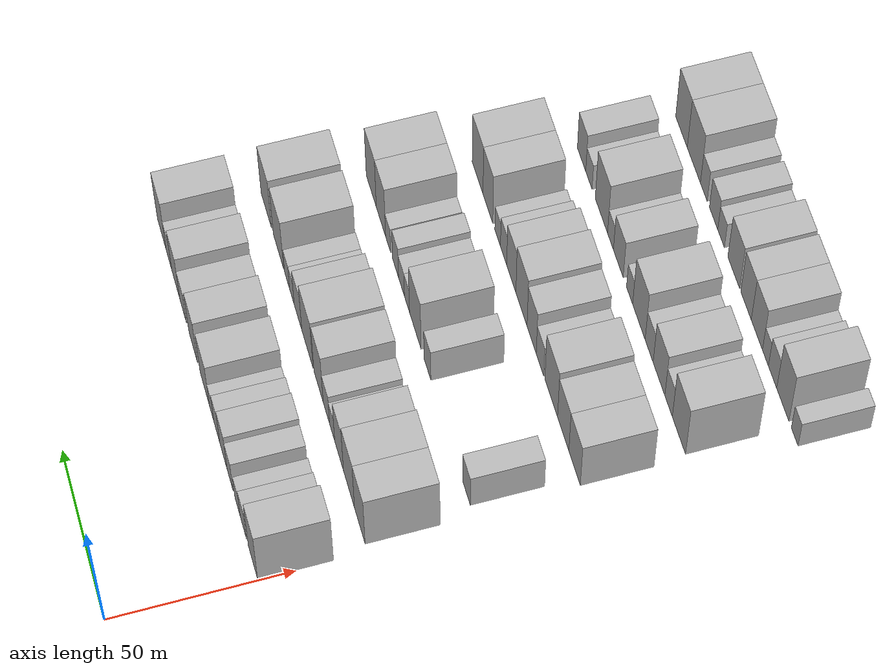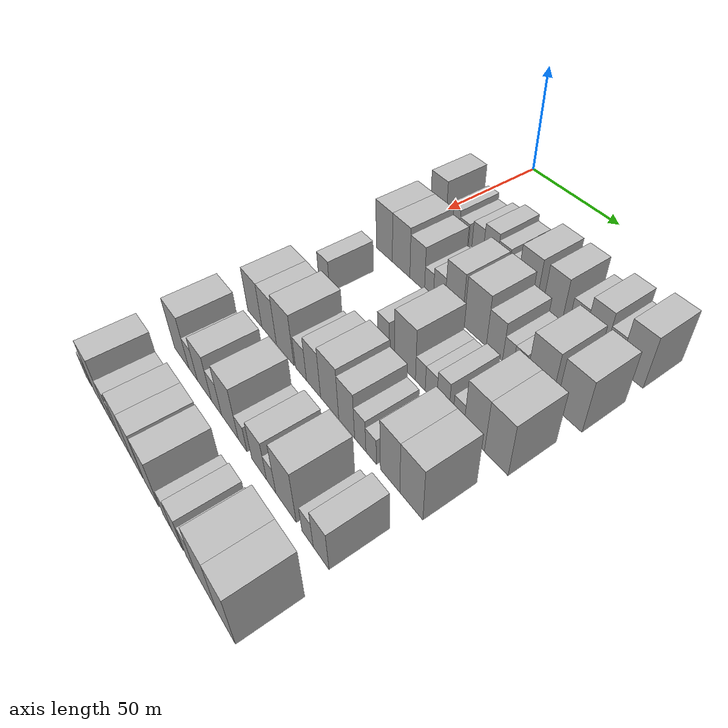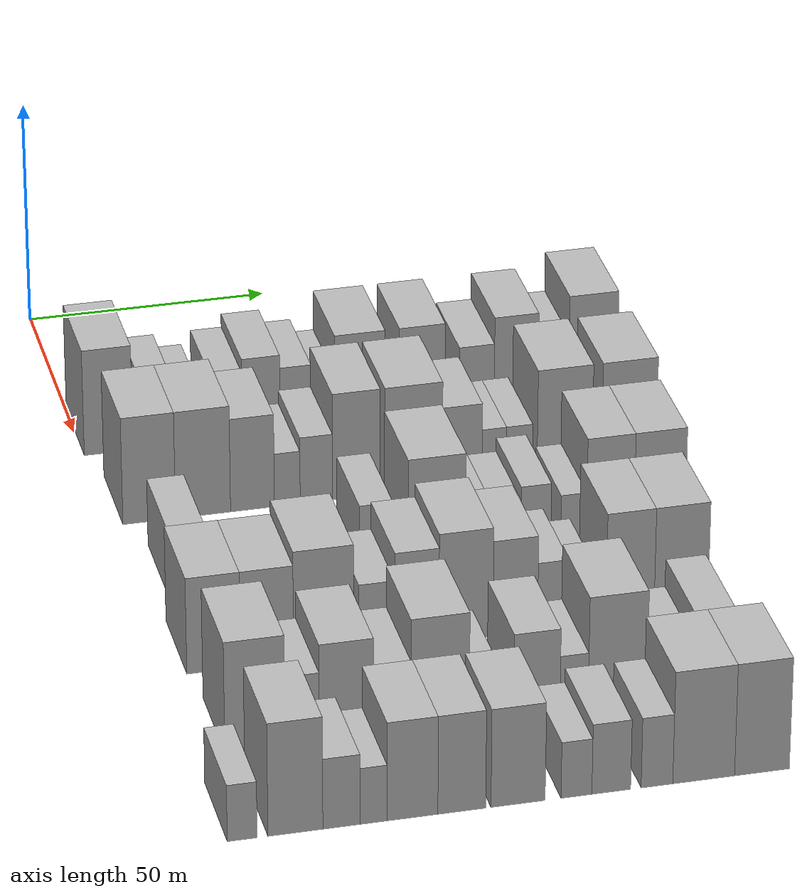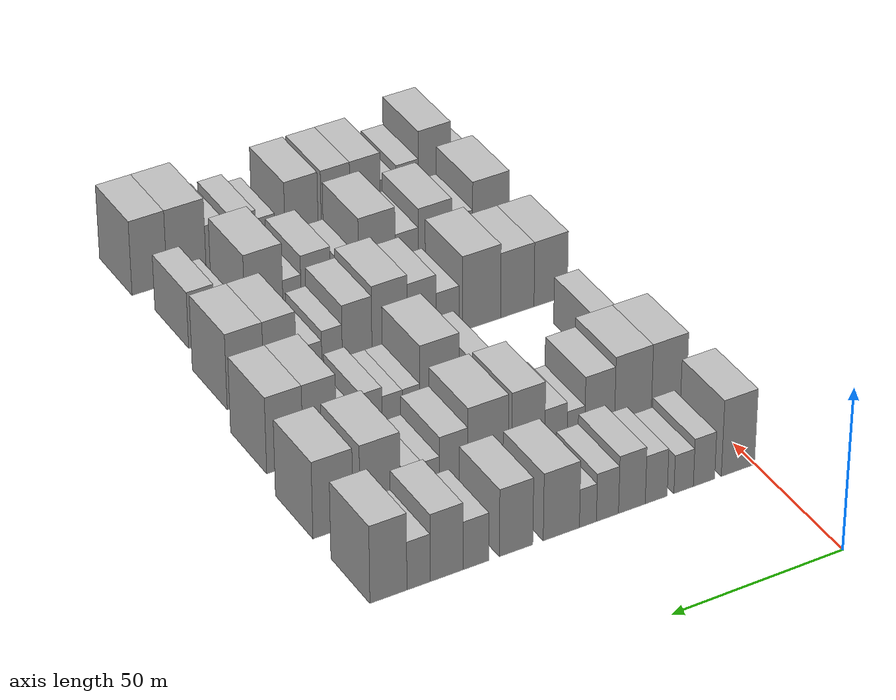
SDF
<sdf version="1.6">
 <world name="default">
  <model name="building_55">
   <static>1</static>
   <pose>50.0000 5.2146 0 0.000000 0.000000 0.000000</pose>
   <link name="link">
    <pose>0 0 12.00 0 0 0</pose>
    <collision name="collision"><geometry><box><size>20.0000 10.0101 24.0000</size></box></geometry></collision>
    <visual name="visual">
     <cast_shadows>0</cast_shadows>
     <geometry><box><size>20.0000 10.0101 24.0000</size></box></geometry>
     <material>
      <script>
       <uri>model://HANNAS_wall/materials/scripts</uri>
       <uri>model://HANNAS_wall/materials/textures</uri>
       <name>vrc/HANNAS_wall</name>
      </script>
     </material>
    </visual>
   </link>
  </model>
  <model name="building_56">
   <static>1</static>
   <pose>50.0000 15.4160 0 0.000000 0.000000 0.000000</pose>
   <link name="link">
    <pose>0 0 7.50 0 0 0</pose>
    <collision name="collision"><geometry><box><size>20.0000 6.3928 15.0000</size></box></geometry></collision>
    <visual name="visual">
     <cast_shadows>0</cast_shadows>
     <geometry><box><size>20.0000 6.3928 15.0000</size></box></geometry>
     <material>
      <script>
       <uri>model://HANNAS_wall/materials/scripts</uri>
       <uri>model://HANNAS_wall/materials/textures</uri>
       <name>vrc/HANNAS_wall</name>
      </script>
     </material>
    </visual>
   </link>
  </model>
  <model name="building_57">
   <static>1</static>
   <pose>50.0000 21.5016 0 0.000000 0.000000 0.000000</pose>
   <link name="link">
    <pose>0 0 6.00 0 0 0</pose>
    <collision name="collision"><geometry><box><size>20.0000 5.7785 12.0000</size></box></geometry></collision>
    <visual name="visual">
     <cast_shadows>0</cast_shadows>
     <geometry><box><size>20.0000 5.7785 12.0000</size></box></geometry>
     <material>
      <script>
       <uri>model://HANNAS_wall/materials/scripts</uri>
       <uri>model://HANNAS_wall/materials/textures</uri>
       <name>vrc/HANNAS_wall</name>
      </script>
     </material>
    </visual>
   </link>
  </model>
  <model name="building_58">
   <static>1</static>
   <pose>50.0000 29.6361 0 0.000000 0.000000 0.000000</pose>
   <link name="link">
    <pose>0 0 7.50 0 0 0</pose>
    <collision name="collision"><geometry><box><size>20.0000 6.4904 15.0000</size></box></geometry></collision>
    <visual name="visual">
     <cast_shadows>0</cast_shadows>
     <geometry><box><size>20.0000 6.4904 15.0000</size></box></geometry>
     <material>
      <script>
       <uri>model://HANNAS_wall/materials/scripts</uri>
       <uri>model://HANNAS_wall/materials/textures</uri>
       <name>vrc/HANNAS_wall</name>
      </script>
     </material>
    </visual>
   </link>
  </model>
  <model name="building_59">
   <static>1</static>
   <pose>50.0000 36.8214 0 0.000000 0.000000 0.000000</pose>
   <link name="link">
    <pose>0 0 9.00 0 0 0</pose>
    <collision name="collision"><geometry><box><size>20.0000 7.8803 18.0000</size></box></geometry></collision>
    <visual name="visual">
     <cast_shadows>0</cast_shadows>
     <geometry><box><size>20.0000 7.8803 18.0000</size></box></geometry>
     <material>
      <script>
       <uri>model://HANNAS_wall/materials/scripts</uri>
       <uri>model://HANNAS_wall/materials/textures</uri>
       <name>vrc/HANNAS_wall</name>
      </script>
     </material>
    </visual>
   </link>
  </model>
  <model name="building_60">
   <static>1</static>
   <pose>50.0000 44.0002 0 0.000000 0.000000 0.000000</pose>
   <link name="link">
    <pose>0 0 7.50 0 0 0</pose>
    <collision name="collision"><geometry><box><size>20.0000 6.4773 15.0000</size></box></geometry></collision>
    <visual name="visual">
     <cast_shadows>0</cast_shadows>
     <geometry><box><size>20.0000 6.4773 15.0000</size></box></geometry>
     <material>
      <script>
       <uri>model://HANNAS_wall/materials/scripts</uri>
       <uri>model://HANNAS_wall/materials/textures</uri>
       <name>vrc/HANNAS_wall</name>
      </script>
     </material>
    </visual>
   </link>
  </model>
  <model name="building_61">
   <static>1</static>
   <pose>50.0000 49.7104 0 0.000000 0.000000 0.000000</pose>
   <link name="link">
    <pose>0 0 6.00 0 0 0</pose>
    <collision name="collision"><geometry><box><size>20.0000 4.9431 12.0000</size></box></geometry></collision>
    <visual name="visual">
     <cast_shadows>0</cast_shadows>
     <geometry><box><size>20.0000 4.9431 12.0000</size></box></geometry>
     <material>
      <script>
       <uri>model://HANNAS_wall/materials/scripts</uri>
       <uri>model://HANNAS_wall/materials/textures</uri>
       <name>vrc/HANNAS_wall</name>
      </script>
     </material>
    </visual>
   </link>
  </model>
  <model name="building_62">
   <static>1</static>
   <pose>50.0000 57.4288 0 0.000000 0.000000 0.000000</pose>
   <link name="link">
    <pose>0 0 10.50 0 0 0</pose>
    <collision name="collision"><geometry><box><size>20.0000 10.4938 21.0000</size></box></geometry></collision>
    <visual name="visual">
     <cast_shadows>0</cast_shadows>
     <geometry><box><size>20.0000 10.4938 21.0000</size></box></geometry>
     <material>
      <script>
       <uri>model://HANNAS_wall/materials/scripts</uri>
       <uri>model://HANNAS_wall/materials/textures</uri>
       <name>vrc/HANNAS_wall</name>
      </script>
     </material>
    </visual>
   </link>
  </model>
  <model name="building_63">
   <static>1</static>
   <pose>50.0000 70.4778 0 0.000000 0.000000 0.000000</pose>
   <link name="link">
    <pose>0 0 10.50 0 0 0</pose>
    <collision name="collision"><geometry><box><size>20.0000 9.6041 21.0000</size></box></geometry></collision>
    <visual name="visual">
     <cast_shadows>0</cast_shadows>
     <geometry><box><size>20.0000 9.6041 21.0000</size></box></geometry>
     <material>
      <script>
       <uri>model://HANNAS_wall/materials/scripts</uri>
       <uri>model://HANNAS_wall/materials/textures</uri>
       <name>vrc/HANNAS_wall</name>
      </script>
     </material>
    </visual>
   </link>
  </model>
  <model name="building_64">
   <static>1</static>
   <pose>50.0000 81.9742 0 0.000000 0.000000 0.000000</pose>
   <link name="link">
    <pose>0 0 7.50 0 0 0</pose>
    <collision name="collision"><geometry><box><size>20.0000 7.3887 15.0000</size></box></geometry></collision>
    <visual name="visual">
     <cast_shadows>0</cast_shadows>
     <geometry><box><size>20.0000 7.3887 15.0000</size></box></geometry>
     <material>
      <script>
       <uri>model://HANNAS_wall/materials/scripts</uri>
       <uri>model://HANNAS_wall/materials/textures</uri>
       <name>vrc/HANNAS_wall</name>
      </script>
     </material>
    </visual>
   </link>
  </model>
  <model name="building_65">
   <static>1</static>
   <pose>50.0000 90.2944 0 0.000000 0.000000 0.000000</pose>
   <link name="link">
    <pose>0 0 10.50 0 0 0</pose>
    <collision name="collision"><geometry><box><size>20.0000 9.2517 21.0000</size></box></geometry></collision>
    <visual name="visual">
     <cast_shadows>0</cast_shadows>
     <geometry><box><size>20.0000 9.2517 21.0000</size></box></geometry>
     <material>
      <script>
       <uri>model://HANNAS_wall/materials/scripts</uri>
       <uri>model://HANNAS_wall/materials/textures</uri>
       <name>vrc/HANNAS_wall</name>
      </script>
     </material>
    </visual>
   </link>
  </model>
  <model name="building_66">
   <static>1</static>
   <pose>50.0000 98.1744 0 0.000000 0.000000 0.000000</pose>
   <link name="link">
    <pose>0 0 7.50 0 0 0</pose>
    <collision name="collision"><geometry><box><size>20.0000 6.5083 15.0000</size></box></geometry></collision>
    <visual name="visual">
     <cast_shadows>0</cast_shadows>
     <geometry><box><size>20.0000 6.5083 15.0000</size></box></geometry>
     <material>
      <script>
       <uri>model://HANNAS_wall/materials/scripts</uri>
       <uri>model://HANNAS_wall/materials/textures</uri>
       <name>vrc/HANNAS_wall</name>
      </script>
     </material>
    </visual>
   </link>
  </model>
  <model name="building_67">
   <static>1</static>
   <pose>50.0000 106.5988 0 0.000000 0.000000 0.000000</pose>
   <link name="link">
    <pose>0 0 12.00 0 0 0</pose>
    <collision name="collision"><geometry><box><size>20.0000 10.3404 24.0000</size></box></geometry></collision>
    <visual name="visual">
     <cast_shadows>0</cast_shadows>
     <geometry><box><size>20.0000 10.3404 24.0000</size></box></geometry>
     <material>
      <script>
       <uri>model://HANNAS_wall/materials/scripts</uri>
       <uri>model://HANNAS_wall/materials/textures</uri>
       <name>vrc/HANNAS_wall</name>
      </script>
     </material>
    </visual>
   </link>
  </model>
  <model name="building_172">
   <static>1</static>
   <pose>79.0000 7.8289 0 0.000000 0.000000 0.000000</pose>
   <link name="link">
    <pose>0 0 12.00 0 0 0</pose>
    <collision name="collision"><geometry><box><size>20.0000 10.6306 24.0000</size></box></geometry></collision>
    <visual name="visual">
     <cast_shadows>0</cast_shadows>
     <geometry><box><size>20.0000 10.6306 24.0000</size></box></geometry>
     <material>
      <script>
       <uri>model://HANNAS_wall/materials/scripts</uri>
       <uri>model://HANNAS_wall/materials/textures</uri>
       <name>vrc/HANNAS_wall</name>
      </script>
     </material>
    </visual>
   </link>
  </model>
  <model name="building_173">
   <static>1</static>
   <pose>79.0000 18.7126 0 0.000000 0.000000 0.000000</pose>
   <link name="link">
    <pose>0 0 12.00 0 0 0</pose>
    <collision name="collision"><geometry><box><size>20.0000 11.1369 24.0000</size></box></geometry></collision>
    <visual name="visual">
     <cast_shadows>0</cast_shadows>
     <geometry><box><size>20.0000 11.1369 24.0000</size></box></geometry>
     <material>
      <script>
       <uri>model://HANNAS_wall/materials/scripts</uri>
       <uri>model://HANNAS_wall/materials/textures</uri>
       <name>vrc/HANNAS_wall</name>
      </script>
     </material>
    </visual>
   </link>
  </model>
  <model name="building_174">
   <static>1</static>
   <pose>79.0000 28.7517 0 0.000000 0.000000 0.000000</pose>
   <link name="link">
    <pose>0 0 10.50 0 0 0</pose>
    <collision name="collision"><geometry><box><size>20.0000 8.9412 21.0000</size></box></geometry></collision>
    <visual name="visual">
     <cast_shadows>0</cast_shadows>
     <geometry><box><size>20.0000 8.9412 21.0000</size></box></geometry>
     <material>
      <script>
       <uri>model://HANNAS_wall/materials/scripts</uri>
       <uri>model://HANNAS_wall/materials/textures</uri>
       <name>vrc/HANNAS_wall</name>
      </script>
     </material>
    </visual>
   </link>
  </model>
  <model name="building_175">
   <static>1</static>
   <pose>79.0000 35.8405 0 0.000000 0.000000 0.000000</pose>
   <link name="link">
    <pose>0 0 6.00 0 0 0</pose>
    <collision name="collision"><geometry><box><size>20.0000 5.2366 12.0000</size></box></geometry></collision>
    <visual name="visual">
     <cast_shadows>0</cast_shadows>
     <geometry><box><size>20.0000 5.2366 12.0000</size></box></geometry>
     <material>
      <script>
       <uri>model://HANNAS_wall/materials/scripts</uri>
       <uri>model://HANNAS_wall/materials/textures</uri>
       <name>vrc/HANNAS_wall</name>
      </script>
     </material>
    </visual>
   </link>
  </model>
  <model name="building_176">
   <static>1</static>
   <pose>79.0000 41.7694 0 0.000000 0.000000 0.000000</pose>
   <link name="link">
    <pose>0 0 7.50 0 0 0</pose>
    <collision name="collision"><geometry><box><size>20.0000 6.6211 15.0000</size></box></geometry></collision>
    <visual name="visual">
     <cast_shadows>0</cast_shadows>
     <geometry><box><size>20.0000 6.6211 15.0000</size></box></geometry>
     <material>
      <script>
       <uri>model://HANNAS_wall/materials/scripts</uri>
       <uri>model://HANNAS_wall/materials/textures</uri>
       <name>vrc/HANNAS_wall</name>
      </script>
     </material>
    </visual>
   </link>
  </model>
  <model name="building_177">
   <static>1</static>
   <pose>79.0000 49.9518 0 0.000000 0.000000 0.000000</pose>
   <link name="link">
    <pose>0 0 12.00 0 0 0</pose>
    <collision name="collision"><geometry><box><size>20.0000 9.7436 24.0000</size></box></geometry></collision>
    <visual name="visual">
     <cast_shadows>0</cast_shadows>
     <geometry><box><size>20.0000 9.7436 24.0000</size></box></geometry>
     <material>
      <script>
       <uri>model://HANNAS_wall/materials/scripts</uri>
       <uri>model://HANNAS_wall/materials/textures</uri>
       <name>vrc/HANNAS_wall</name>
      </script>
     </material>
    </visual>
   </link>
  </model>
  <model name="building_178">
   <static>1</static>
   <pose>79.0000 61.7249 0 0.000000 0.000000 0.000000</pose>
   <link name="link">
    <pose>0 0 12.00 0 0 0</pose>
    <collision name="collision"><geometry><box><size>20.0000 11.8027 24.0000</size></box></geometry></collision>
    <visual name="visual">
     <cast_shadows>0</cast_shadows>
     <geometry><box><size>20.0000 11.8027 24.0000</size></box></geometry>
     <material>
      <script>
       <uri>model://HANNAS_wall/materials/scripts</uri>
       <uri>model://HANNAS_wall/materials/textures</uri>
       <name>vrc/HANNAS_wall</name>
      </script>
     </material>
    </visual>
   </link>
  </model>
  <model name="building_179">
   <static>1</static>
   <pose>79.0000 71.7182 0 0.000000 0.000000 0.000000</pose>
   <link name="link">
    <pose>0 0 9.00 0 0 0</pose>
    <collision name="collision"><geometry><box><size>20.0000 8.1837 18.0000</size></box></geometry></collision>
    <visual name="visual">
     <cast_shadows>0</cast_shadows>
     <geometry><box><size>20.0000 8.1837 18.0000</size></box></geometry>
     <material>
      <script>
       <uri>model://HANNAS_wall/materials/scripts</uri>
       <uri>model://HANNAS_wall/materials/textures</uri>
       <name>vrc/HANNAS_wall</name>
      </script>
     </material>
    </visual>
   </link>
  </model>
  <model name="building_180">
   <static>1</static>
   <pose>79.0000 78.3040 0 0.000000 0.000000 0.000000</pose>
   <link name="link">
    <pose>0 0 6.00 0 0 0</pose>
    <collision name="collision"><geometry><box><size>20.0000 4.9880 12.0000</size></box></geometry></collision>
    <visual name="visual">
     <cast_shadows>0</cast_shadows>
     <geometry><box><size>20.0000 4.9880 12.0000</size></box></geometry>
     <material>
      <script>
       <uri>model://HANNAS_wall/materials/scripts</uri>
       <uri>model://HANNAS_wall/materials/textures</uri>
       <name>vrc/HANNAS_wall</name>
      </script>
     </material>
    </visual>
   </link>
  </model>
  <model name="building_181">
   <static>1</static>
   <pose>79.0000 83.4930 0 0.000000 0.000000 0.000000</pose>
   <link name="link">
    <pose>0 0 6.00 0 0 0</pose>
    <collision name="collision"><geometry><box><size>20.0000 5.3899 12.0000</size></box></geometry></collision>
    <visual name="visual">
     <cast_shadows>0</cast_shadows>
     <geometry><box><size>20.0000 5.3899 12.0000</size></box></geometry>
     <material>
      <script>
       <uri>model://HANNAS_wall/materials/scripts</uri>
       <uri>model://HANNAS_wall/materials/textures</uri>
       <name>vrc/HANNAS_wall</name>
      </script>
     </material>
    </visual>
   </link>
  </model>
  <model name="building_182">
   <static>1</static>
   <pose>79.0000 92.8943 0 0.000000 0.000000 0.000000</pose>
   <link name="link">
    <pose>0 0 12.00 0 0 0</pose>
    <collision name="collision"><geometry><box><size>20.0000 11.4127 24.0000</size></box></geometry></collision>
    <visual name="visual">
     <cast_shadows>0</cast_shadows>
     <geometry><box><size>20.0000 11.4127 24.0000</size></box></geometry>
     <material>
      <script>
       <uri>model://HANNAS_wall/materials/scripts</uri>
       <uri>model://HANNAS_wall/materials/textures</uri>
       <name>vrc/HANNAS_wall</name>
      </script>
     </material>
    </visual>
   </link>
  </model>
  <model name="building_183">
   <static>1</static>
   <pose>79.0000 106.2939 0 0.000000 0.000000 0.000000</pose>
   <link name="link">
    <pose>0 0 12.00 0 0 0</pose>
    <collision name="collision"><geometry><box><size>20.0000 11.3866 24.0000</size></box></geometry></collision>
    <visual name="visual">
     <cast_shadows>0</cast_shadows>
     <geometry><box><size>20.0000 11.3866 24.0000</size></box></geometry>
     <material>
      <script>
       <uri>model://HANNAS_wall/materials/scripts</uri>
       <uri>model://HANNAS_wall/materials/textures</uri>
       <name>vrc/HANNAS_wall</name>
      </script>
     </material>
    </visual>
   </link>
  </model>
  <model name="building_288">
   <static>1</static>
   <pose>108.0000 9.4879 0 0.000000 0.000000 0.000000</pose>
   <link name="link">
    <pose>0 0 7.50 0 0 0</pose>
    <collision name="collision"><geometry><box><size>20.0000 7.3741 15.0000</size></box></geometry></collision>
    <visual name="visual">
     <cast_shadows>0</cast_shadows>
     <geometry><box><size>20.0000 7.3741 15.0000</size></box></geometry>
     <material>
      <script>
       <uri>model://HANNAS_wall/materials/scripts</uri>
       <uri>model://HANNAS_wall/materials/textures</uri>
       <name>vrc/HANNAS_wall</name>
      </script>
     </material>
    </visual>
   </link>
  </model>
  <model name="building_289">
   <static>1</static>
   <pose>108.0000 47.2314 0 0.000000 0.000000 0.000000</pose>
   <link name="link">
    <pose>0 0 7.50 0 0 0</pose>
    <collision name="collision"><geometry><box><size>20.0000 6.7043 15.0000</size></box></geometry></collision>
    <visual name="visual">
     <cast_shadows>0</cast_shadows>
     <geometry><box><size>20.0000 6.7043 15.0000</size></box></geometry>
     <material>
      <script>
       <uri>model://HANNAS_wall/materials/scripts</uri>
       <uri>model://HANNAS_wall/materials/textures</uri>
       <name>vrc/HANNAS_wall</name>
      </script>
     </material>
    </visual>
   </link>
  </model>
  <model name="building_290">
   <static>1</static>
   <pose>108.0000 59.3841 0 0.000000 0.000000 0.000000</pose>
   <link name="link">
    <pose>0 0 12.00 0 0 0</pose>
    <collision name="collision"><geometry><box><size>20.0000 11.6011 24.0000</size></box></geometry></collision>
    <visual name="visual">
     <cast_shadows>0</cast_shadows>
     <geometry><box><size>20.0000 11.6011 24.0000</size></box></geometry>
     <material>
      <script>
       <uri>model://HANNAS_wall/materials/scripts</uri>
       <uri>model://HANNAS_wall/materials/textures</uri>
       <name>vrc/HANNAS_wall</name>
      </script>
     </material>
    </visual>
   </link>
  </model>
  <model name="building_291">
   <static>1</static>
   <pose>108.0000 67.7807 0 0.000000 0.000000 0.000000</pose>
   <link name="link">
    <pose>0 0 6.00 0 0 0</pose>
    <collision name="collision"><geometry><box><size>20.0000 5.1921 12.0000</size></box></geometry></collision>
    <visual name="visual">
     <cast_shadows>0</cast_shadows>
     <geometry><box><size>20.0000 5.1921 12.0000</size></box></geometry>
     <material>
      <script>
       <uri>model://HANNAS_wall/materials/scripts</uri>
       <uri>model://HANNAS_wall/materials/textures</uri>
       <name>vrc/HANNAS_wall</name>
      </script>
     </material>
    </visual>
   </link>
  </model>
  <model name="building_292">
   <static>1</static>
   <pose>108.0000 73.3391 0 0.000000 0.000000 0.000000</pose>
   <link name="link">
    <pose>0 0 6.00 0 0 0</pose>
    <collision name="collision"><geometry><box><size>20.0000 5.9247 12.0000</size></box></geometry></collision>
    <visual name="visual">
     <cast_shadows>0</cast_shadows>
     <geometry><box><size>20.0000 5.9247 12.0000</size></box></geometry>
     <material>
      <script>
       <uri>model://HANNAS_wall/materials/scripts</uri>
       <uri>model://HANNAS_wall/materials/textures</uri>
       <name>vrc/HANNAS_wall</name>
      </script>
     </material>
    </visual>
   </link>
  </model>
  <model name="building_293">
   <static>1</static>
   <pose>108.0000 79.3528 0 0.000000 0.000000 0.000000</pose>
   <link name="link">
    <pose>0 0 7.50 0 0 0</pose>
    <collision name="collision"><geometry><box><size>20.0000 6.1026 15.0000</size></box></geometry></collision>
    <visual name="visual">
     <cast_shadows>0</cast_shadows>
     <geometry><box><size>20.0000 6.1026 15.0000</size></box></geometry>
     <material>
      <script>
       <uri>model://HANNAS_wall/materials/scripts</uri>
       <uri>model://HANNAS_wall/materials/textures</uri>
       <name>vrc/HANNAS_wall</name>
      </script>
     </material>
    </visual>
   </link>
  </model>
  <model name="building_294">
   <static>1</static>
   <pose>108.0000 87.0070 0 0.000000 0.000000 0.000000</pose>
   <link name="link">
    <pose>0 0 6.00 0 0 0</pose>
    <collision name="collision"><geometry><box><size>20.0000 5.2059 12.0000</size></box></geometry></collision>
    <visual name="visual">
     <cast_shadows>0</cast_shadows>
     <geometry><box><size>20.0000 5.2059 12.0000</size></box></geometry>
     <material>
      <script>
       <uri>model://HANNAS_wall/materials/scripts</uri>
       <uri>model://HANNAS_wall/materials/textures</uri>
       <name>vrc/HANNAS_wall</name>
      </script>
     </material>
    </visual>
   </link>
  </model>
  <model name="building_295">
   <static>1</static>
   <pose>108.0000 94.4522 0 0.000000 0.000000 0.000000</pose>
   <link name="link">
    <pose>0 0 12.00 0 0 0</pose>
    <collision name="collision"><geometry><box><size>20.0000 9.6846 24.0000</size></box></geometry></collision>
    <visual name="visual">
     <cast_shadows>0</cast_shadows>
     <geometry><box><size>20.0000 9.6846 24.0000</size></box></geometry>
     <material>
      <script>
       <uri>model://HANNAS_wall/materials/scripts</uri>
       <uri>model://HANNAS_wall/materials/textures</uri>
       <name>vrc/HANNAS_wall</name>
      </script>
     </material>
    </visual>
   </link>
  </model>
  <model name="building_296">
   <static>1</static>
   <pose>108.0000 104.5283 0 0.000000 0.000000 0.000000</pose>
   <link name="link">
    <pose>0 0 12.00 0 0 0</pose>
    <collision name="collision"><geometry><box><size>20.0000 10.4678 24.0000</size></box></geometry></collision>
    <visual name="visual">
     <cast_shadows>0</cast_shadows>
     <geometry><box><size>20.0000 10.4678 24.0000</size></box></geometry>
     <material>
      <script>
       <uri>model://HANNAS_wall/materials/scripts</uri>
       <uri>model://HANNAS_wall/materials/textures</uri>
       <name>vrc/HANNAS_wall</name>
      </script>
     </material>
    </visual>
   </link>
  </model>
  <model name="building_394">
   <static>1</static>
   <pose>137.0000 8.7396 0 0.000000 0.000000 0.000000</pose>
   <link name="link">
    <pose>0 0 10.50 0 0 0</pose>
    <collision name="collision"><geometry><box><size>20.0000 10.3859 21.0000</size></box></geometry></collision>
    <visual name="visual">
     <cast_shadows>0</cast_shadows>
     <geometry><box><size>20.0000 10.3859 21.0000</size></box></geometry>
     <material>
      <script>
       <uri>model://HANNAS_wall/materials/scripts</uri>
       <uri>model://HANNAS_wall/materials/textures</uri>
       <name>vrc/HANNAS_wall</name>
      </script>
     </material>
    </visual>
   </link>
  </model>
  <model name="building_395">
   <static>1</static>
   <pose>137.0000 19.0999 0 0.000000 0.000000 0.000000</pose>
   <link name="link">
    <pose>0 0 10.50 0 0 0</pose>
    <collision name="collision"><geometry><box><size>20.0000 10.3346 21.0000</size></box></geometry></collision>
    <visual name="visual">
     <cast_shadows>0</cast_shadows>
     <geometry><box><size>20.0000 10.3346 21.0000</size></box></geometry>
     <material>
      <script>
       <uri>model://HANNAS_wall/materials/scripts</uri>
       <uri>model://HANNAS_wall/materials/textures</uri>
       <name>vrc/HANNAS_wall</name>
      </script>
     </material>
    </visual>
   </link>
  </model>
  <model name="building_396">
   <static>1</static>
   <pose>137.0000 30.1317 0 0.000000 0.000000 0.000000</pose>
   <link name="link">
    <pose>0 0 12.00 0 0 0</pose>
    <collision name="collision"><geometry><box><size>20.0000 11.7290 24.0000</size></box></geometry></collision>
    <visual name="visual">
     <cast_shadows>0</cast_shadows>
     <geometry><box><size>20.0000 11.7290 24.0000</size></box></geometry>
     <material>
      <script>
       <uri>model://HANNAS_wall/materials/scripts</uri>
       <uri>model://HANNAS_wall/materials/textures</uri>
       <name>vrc/HANNAS_wall</name>
      </script>
     </material>
    </visual>
   </link>
  </model>
  <model name="building_397">
   <static>1</static>
   <pose>137.0000 40.5135 0 0.000000 0.000000 0.000000</pose>
   <link name="link">
    <pose>0 0 7.50 0 0 0</pose>
    <collision name="collision"><geometry><box><size>20.0000 7.0347 15.0000</size></box></geometry></collision>
    <visual name="visual">
     <cast_shadows>0</cast_shadows>
     <geometry><box><size>20.0000 7.0347 15.0000</size></box></geometry>
     <material>
      <script>
       <uri>model://HANNAS_wall/materials/scripts</uri>
       <uri>model://HANNAS_wall/materials/textures</uri>
       <name>vrc/HANNAS_wall</name>
      </script>
     </material>
    </visual>
   </link>
  </model>
  <model name="building_398">
   <static>1</static>
   <pose>137.0000 48.3665 0 0.000000 0.000000 0.000000</pose>
   <link name="link">
    <pose>0 0 10.50 0 0 0</pose>
    <collision name="collision"><geometry><box><size>20.0000 8.6712 21.0000</size></box></geometry></collision>
    <visual name="visual">
     <cast_shadows>0</cast_shadows>
     <geometry><box><size>20.0000 8.6712 21.0000</size></box></geometry>
     <material>
      <script>
       <uri>model://HANNAS_wall/materials/scripts</uri>
       <uri>model://HANNAS_wall/materials/textures</uri>
       <name>vrc/HANNAS_wall</name>
      </script>
     </material>
    </visual>
   </link>
  </model>
  <model name="building_399">
   <static>1</static>
   <pose>137.0000 58.0182 0 0.000000 0.000000 0.000000</pose>
   <link name="link">
    <pose>0 0 12.00 0 0 0</pose>
    <collision name="collision"><geometry><box><size>20.0000 10.6322 24.0000</size></box></geometry></collision>
    <visual name="visual">
     <cast_shadows>0</cast_shadows>
     <geometry><box><size>20.0000 10.6322 24.0000</size></box></geometry>
     <material>
      <script>
       <uri>model://HANNAS_wall/materials/scripts</uri>
       <uri>model://HANNAS_wall/materials/textures</uri>
       <name>vrc/HANNAS_wall</name>
      </script>
     </material>
    </visual>
   </link>
  </model>
  <model name="building_400">
   <static>1</static>
   <pose>137.0000 67.7487 0 0.000000 0.000000 0.000000</pose>
   <link name="link">
    <pose>0 0 10.50 0 0 0</pose>
    <collision name="collision"><geometry><box><size>20.0000 8.8288 21.0000</size></box></geometry></collision>
    <visual name="visual">
     <cast_shadows>0</cast_shadows>
     <geometry><box><size>20.0000 8.8288 21.0000</size></box></geometry>
     <material>
      <script>
       <uri>model://HANNAS_wall/materials/scripts</uri>
       <uri>model://HANNAS_wall/materials/textures</uri>
       <name>vrc/HANNAS_wall</name>
      </script>
     </material>
    </visual>
   </link>
  </model>
  <model name="building_401">
   <static>1</static>
   <pose>137.0000 75.1889 0 0.000000 0.000000 0.000000</pose>
   <link name="link">
    <pose>0 0 7.50 0 0 0</pose>
    <collision name="collision"><geometry><box><size>20.0000 6.0516 15.0000</size></box></geometry></collision>
    <visual name="visual">
     <cast_shadows>0</cast_shadows>
     <geometry><box><size>20.0000 6.0516 15.0000</size></box></geometry>
     <material>
      <script>
       <uri>model://HANNAS_wall/materials/scripts</uri>
       <uri>model://HANNAS_wall/materials/textures</uri>
       <name>vrc/HANNAS_wall</name>
      </script>
     </material>
    </visual>
   </link>
  </model>
  <model name="building_402">
   <static>1</static>
   <pose>137.0000 80.9680 0 0.000000 0.000000 0.000000</pose>
   <link name="link">
    <pose>0 0 6.00 0 0 0</pose>
    <collision name="collision"><geometry><box><size>20.0000 5.5065 12.0000</size></box></geometry></collision>
    <visual name="visual">
     <cast_shadows>0</cast_shadows>
     <geometry><box><size>20.0000 5.5065 12.0000</size></box></geometry>
     <material>
      <script>
       <uri>model://HANNAS_wall/materials/scripts</uri>
       <uri>model://HANNAS_wall/materials/textures</uri>
       <name>vrc/HANNAS_wall</name>
      </script>
     </material>
    </visual>
   </link>
  </model>
  <model name="building_403">
   <static>1</static>
   <pose>137.0000 90.5280 0 0.000000 0.000000 0.000000</pose>
   <link name="link">
    <pose>0 0 12.00 0 0 0</pose>
    <collision name="collision"><geometry><box><size>20.0000 9.6136 24.0000</size></box></geometry></collision>
    <visual name="visual">
     <cast_shadows>0</cast_shadows>
     <geometry><box><size>20.0000 9.6136 24.0000</size></box></geometry>
     <material>
      <script>
       <uri>model://HANNAS_wall/materials/scripts</uri>
       <uri>model://HANNAS_wall/materials/textures</uri>
       <name>vrc/HANNAS_wall</name>
      </script>
     </material>
    </visual>
   </link>
  </model>
  <model name="building_404">
   <static>1</static>
   <pose>137.0000 100.7193 0 0.000000 0.000000 0.000000</pose>
   <link name="link">
    <pose>0 0 12.00 0 0 0</pose>
    <collision name="collision"><geometry><box><size>20.0000 10.7689 24.0000</size></box></geometry></collision>
    <visual name="visual">
     <cast_shadows>0</cast_shadows>
     <geometry><box><size>20.0000 10.7689 24.0000</size></box></geometry>
     <material>
      <script>
       <uri>model://HANNAS_wall/materials/scripts</uri>
       <uri>model://HANNAS_wall/materials/textures</uri>
       <name>vrc/HANNAS_wall</name>
      </script>
     </material>
    </visual>
   </link>
  </model>
  <model name="building_513">
   <static>1</static>
   <pose>166.0000 10.5125 0 0.000000 0.000000 0.000000</pose>
   <link name="link">
    <pose>0 0 12.00 0 0 0</pose>
    <collision name="collision"><geometry><box><size>20.0000 11.4197 24.0000</size></box></geometry></collision>
    <visual name="visual">
     <cast_shadows>0</cast_shadows>
     <geometry><box><size>20.0000 11.4197 24.0000</size></box></geometry>
     <material>
      <script>
       <uri>model://HANNAS_wall/materials/scripts</uri>
       <uri>model://HANNAS_wall/materials/textures</uri>
       <name>vrc/HANNAS_wall</name>
      </script>
     </material>
    </visual>
   </link>
  </model>
  <model name="building_514">
   <static>1</static>
   <pose>166.0000 19.4779 0 0.000000 0.000000 0.000000</pose>
   <link name="link">
    <pose>0 0 7.50 0 0 0</pose>
    <collision name="collision"><geometry><box><size>20.0000 6.5112 15.0000</size></box></geometry></collision>
    <visual name="visual">
     <cast_shadows>0</cast_shadows>
     <geometry><box><size>20.0000 6.5112 15.0000</size></box></geometry>
     <material>
      <script>
       <uri>model://HANNAS_wall/materials/scripts</uri>
       <uri>model://HANNAS_wall/materials/textures</uri>
       <name>vrc/HANNAS_wall</name>
      </script>
     </material>
    </visual>
   </link>
  </model>
  <model name="building_515">
   <static>1</static>
   <pose>166.0000 27.8996 0 0.000000 0.000000 0.000000</pose>
   <link name="link">
    <pose>0 0 10.50 0 0 0</pose>
    <collision name="collision"><geometry><box><size>20.0000 10.3321 21.0000</size></box></geometry></collision>
    <visual name="visual">
     <cast_shadows>0</cast_shadows>
     <geometry><box><size>20.0000 10.3321 21.0000</size></box></geometry>
     <material>
      <script>
       <uri>model://HANNAS_wall/materials/scripts</uri>
       <uri>model://HANNAS_wall/materials/textures</uri>
       <name>vrc/HANNAS_wall</name>
      </script>
     </material>
    </visual>
   </link>
  </model>
  <model name="building_516">
   <static>1</static>
   <pose>166.0000 36.6329 0 0.000000 0.000000 0.000000</pose>
   <link name="link">
    <pose>0 0 7.50 0 0 0</pose>
    <collision name="collision"><geometry><box><size>20.0000 7.1344 15.0000</size></box></geometry></collision>
    <visual name="visual">
     <cast_shadows>0</cast_shadows>
     <geometry><box><size>20.0000 7.1344 15.0000</size></box></geometry>
     <material>
      <script>
       <uri>model://HANNAS_wall/materials/scripts</uri>
       <uri>model://HANNAS_wall/materials/textures</uri>
       <name>vrc/HANNAS_wall</name>
      </script>
     </material>
    </visual>
   </link>
  </model>
  <model name="building_517">
   <static>1</static>
   <pose>166.0000 45.8136 0 0.000000 0.000000 0.000000</pose>
   <link name="link">
    <pose>0 0 12.00 0 0 0</pose>
    <collision name="collision"><geometry><box><size>20.0000 11.2271 24.0000</size></box></geometry></collision>
    <visual name="visual">
     <cast_shadows>0</cast_shadows>
     <geometry><box><size>20.0000 11.2271 24.0000</size></box></geometry>
     <material>
      <script>
       <uri>model://HANNAS_wall/materials/scripts</uri>
       <uri>model://HANNAS_wall/materials/textures</uri>
       <name>vrc/HANNAS_wall</name>
      </script>
     </material>
    </visual>
   </link>
  </model>
  <model name="building_518">
   <static>1</static>
   <pose>166.0000 54.2006 0 0.000000 0.000000 0.000000</pose>
   <link name="link">
    <pose>0 0 6.00 0 0 0</pose>
    <collision name="collision"><geometry><box><size>20.0000 5.5469 12.0000</size></box></geometry></collision>
    <visual name="visual">
     <cast_shadows>0</cast_shadows>
     <geometry><box><size>20.0000 5.5469 12.0000</size></box></geometry>
     <material>
      <script>
       <uri>model://HANNAS_wall/materials/scripts</uri>
       <uri>model://HANNAS_wall/materials/textures</uri>
       <name>vrc/HANNAS_wall</name>
      </script>
     </material>
    </visual>
   </link>
  </model>
  <model name="building_519">
   <static>1</static>
   <pose>166.0000 64.4523 0 0.000000 0.000000 0.000000</pose>
   <link name="link">
    <pose>0 0 9.00 0 0 0</pose>
    <collision name="collision"><geometry><box><size>20.0000 8.9566 18.0000</size></box></geometry></collision>
    <visual name="visual">
     <cast_shadows>0</cast_shadows>
     <geometry><box><size>20.0000 8.9566 18.0000</size></box></geometry>
     <material>
      <script>
       <uri>model://HANNAS_wall/materials/scripts</uri>
       <uri>model://HANNAS_wall/materials/textures</uri>
       <name>vrc/HANNAS_wall</name>
      </script>
     </material>
    </visual>
   </link>
  </model>
  <model name="building_520">
   <static>1</static>
   <pose>166.0000 71.6624 0 0.000000 0.000000 0.000000</pose>
   <link name="link">
    <pose>0 0 6.00 0 0 0</pose>
    <collision name="collision"><geometry><box><size>20.0000 5.4635 12.0000</size></box></geometry></collision>
    <visual name="visual">
     <cast_shadows>0</cast_shadows>
     <geometry><box><size>20.0000 5.4635 12.0000</size></box></geometry>
     <material>
      <script>
       <uri>model://HANNAS_wall/materials/scripts</uri>
       <uri>model://HANNAS_wall/materials/textures</uri>
       <name>vrc/HANNAS_wall</name>
      </script>
     </material>
    </visual>
   </link>
  </model>
  <model name="building_521">
   <static>1</static>
   <pose>166.0000 80.0950 0 0.000000 0.000000 0.000000</pose>
   <link name="link">
    <pose>0 0 12.00 0 0 0</pose>
    <collision name="collision"><geometry><box><size>20.0000 11.4017 24.0000</size></box></geometry></collision>
    <visual name="visual">
     <cast_shadows>0</cast_shadows>
     <geometry><box><size>20.0000 11.4017 24.0000</size></box></geometry>
     <material>
      <script>
       <uri>model://HANNAS_wall/materials/scripts</uri>
       <uri>model://HANNAS_wall/materials/textures</uri>
       <name>vrc/HANNAS_wall</name>
      </script>
     </material>
    </visual>
   </link>
  </model>
  <model name="building_522">
   <static>1</static>
   <pose>166.0000 91.7684 0 0.000000 0.000000 0.000000</pose>
   <link name="link">
    <pose>0 0 6.00 0 0 0</pose>
    <collision name="collision"><geometry><box><size>20.0000 5.9450 12.0000</size></box></geometry></collision>
    <visual name="visual">
     <cast_shadows>0</cast_shadows>
     <geometry><box><size>20.0000 5.9450 12.0000</size></box></geometry>
     <material>
      <script>
       <uri>model://HANNAS_wall/materials/scripts</uri>
       <uri>model://HANNAS_wall/materials/textures</uri>
       <name>vrc/HANNAS_wall</name>
      </script>
     </material>
    </visual>
   </link>
  </model>
  <model name="building_523">
   <static>1</static>
   <pose>166.0000 98.6915 0 0.000000 0.000000 0.000000</pose>
   <link name="link">
    <pose>0 0 9.00 0 0 0</pose>
    <collision name="collision"><geometry><box><size>20.0000 7.9012 18.0000</size></box></geometry></collision>
    <visual name="visual">
     <cast_shadows>0</cast_shadows>
     <geometry><box><size>20.0000 7.9012 18.0000</size></box></geometry>
     <material>
      <script>
       <uri>model://HANNAS_wall/materials/scripts</uri>
       <uri>model://HANNAS_wall/materials/textures</uri>
       <name>vrc/HANNAS_wall</name>
      </script>
     </material>
    </visual>
   </link>
  </model>
  <model name="building_617">
   <static>1</static>
   <pose>195.0000 1.8812 0 0.000000 0.000000 0.000000</pose>
   <link name="link">
    <pose>0 0 6.00 0 0 0</pose>
    <collision name="collision"><geometry><box><size>20.0000 5.5222 12.0000</size></box></geometry></collision>
    <visual name="visual">
     <cast_shadows>0</cast_shadows>
     <geometry><box><size>20.0000 5.5222 12.0000</size></box></geometry>
     <material>
      <script>
       <uri>model://HANNAS_wall/materials/scripts</uri>
       <uri>model://HANNAS_wall/materials/textures</uri>
       <name>vrc/HANNAS_wall</name>
      </script>
     </material>
    </visual>
   </link>
  </model>
  <model name="building_618">
   <static>1</static>
   <pose>195.0000 11.7403 0 0.000000 0.000000 0.000000</pose>
   <link name="link">
    <pose>0 0 12.00 0 0 0</pose>
    <collision name="collision"><geometry><box><size>20.0000 10.1961 24.0000</size></box></geometry></collision>
    <visual name="visual">
     <cast_shadows>0</cast_shadows>
     <geometry><box><size>20.0000 10.1961 24.0000</size></box></geometry>
     <material>
      <script>
       <uri>model://HANNAS_wall/materials/scripts</uri>
       <uri>model://HANNAS_wall/materials/textures</uri>
       <name>vrc/HANNAS_wall</name>
      </script>
     </material>
    </visual>
   </link>
  </model>
  <model name="building_619">
   <static>1</static>
   <pose>195.0000 20.3065 0 0.000000 0.000000 0.000000</pose>
   <link name="link">
    <pose>0 0 7.50 0 0 0</pose>
    <collision name="collision"><geometry><box><size>20.0000 6.9363 15.0000</size></box></geometry></collision>
    <visual name="visual">
     <cast_shadows>0</cast_shadows>
     <geometry><box><size>20.0000 6.9363 15.0000</size></box></geometry>
     <material>
      <script>
       <uri>model://HANNAS_wall/materials/scripts</uri>
       <uri>model://HANNAS_wall/materials/textures</uri>
       <name>vrc/HANNAS_wall</name>
      </script>
     </material>
    </visual>
   </link>
  </model>
  <model name="building_620">
   <static>1</static>
   <pose>195.0000 26.2877 0 0.000000 0.000000 0.000000</pose>
   <link name="link">
    <pose>0 0 6.00 0 0 0</pose>
    <collision name="collision"><geometry><box><size>20.0000 5.0262 12.0000</size></box></geometry></collision>
    <visual name="visual">
     <cast_shadows>0</cast_shadows>
     <geometry><box><size>20.0000 5.0262 12.0000</size></box></geometry>
     <material>
      <script>
       <uri>model://HANNAS_wall/materials/scripts</uri>
       <uri>model://HANNAS_wall/materials/textures</uri>
       <name>vrc/HANNAS_wall</name>
      </script>
     </material>
    </visual>
   </link>
  </model>
  <model name="building_621">
   <static>1</static>
   <pose>195.0000 33.5499 0 0.000000 0.000000 0.000000</pose>
   <link name="link">
    <pose>0 0 10.50 0 0 0</pose>
    <collision name="collision"><geometry><box><size>20.0000 9.4981 21.0000</size></box></geometry></collision>
    <visual name="visual">
     <cast_shadows>0</cast_shadows>
     <geometry><box><size>20.0000 9.4981 21.0000</size></box></geometry>
     <material>
      <script>
       <uri>model://HANNAS_wall/materials/scripts</uri>
       <uri>model://HANNAS_wall/materials/textures</uri>
       <name>vrc/HANNAS_wall</name>
      </script>
     </material>
    </visual>
   </link>
  </model>
  <model name="building_622">
   <static>1</static>
   <pose>195.0000 42.7864 0 0.000000 0.000000 0.000000</pose>
   <link name="link">
    <pose>0 0 10.50 0 0 0</pose>
    <collision name="collision"><geometry><box><size>20.0000 8.9749 21.0000</size></box></geometry></collision>
    <visual name="visual">
     <cast_shadows>0</cast_shadows>
     <geometry><box><size>20.0000 8.9749 21.0000</size></box></geometry>
     <material>
      <script>
       <uri>model://HANNAS_wall/materials/scripts</uri>
       <uri>model://HANNAS_wall/materials/textures</uri>
       <name>vrc/HANNAS_wall</name>
      </script>
     </material>
    </visual>
   </link>
  </model>
  <model name="building_623">
   <static>1</static>
   <pose>195.0000 53.3774 0 0.000000 0.000000 0.000000</pose>
   <link name="link">
    <pose>0 0 10.50 0 0 0</pose>
    <collision name="collision"><geometry><box><size>20.0000 10.2073 21.0000</size></box></geometry></collision>
    <visual name="visual">
     <cast_shadows>0</cast_shadows>
     <geometry><box><size>20.0000 10.2073 21.0000</size></box></geometry>
     <material>
      <script>
       <uri>model://HANNAS_wall/materials/scripts</uri>
       <uri>model://HANNAS_wall/materials/textures</uri>
       <name>vrc/HANNAS_wall</name>
      </script>
     </material>
    </visual>
   </link>
  </model>
  <model name="building_624">
   <static>1</static>
   <pose>195.0000 64.3993 0 0.000000 0.000000 0.000000</pose>
   <link name="link">
    <pose>0 0 6.00 0 0 0</pose>
    <collision name="collision"><geometry><box><size>20.0000 5.8364 12.0000</size></box></geometry></collision>
    <visual name="visual">
     <cast_shadows>0</cast_shadows>
     <geometry><box><size>20.0000 5.8364 12.0000</size></box></geometry>
     <material>
      <script>
       <uri>model://HANNAS_wall/materials/scripts</uri>
       <uri>model://HANNAS_wall/materials/textures</uri>
       <name>vrc/HANNAS_wall</name>
      </script>
     </material>
    </visual>
   </link>
  </model>
  <model name="building_625">
   <static>1</static>
   <pose>195.0000 70.9946 0 0.000000 0.000000 0.000000</pose>
   <link name="link">
    <pose>0 0 7.50 0 0 0</pose>
    <collision name="collision"><geometry><box><size>20.0000 7.3543 15.0000</size></box></geometry></collision>
    <visual name="visual">
     <cast_shadows>0</cast_shadows>
     <geometry><box><size>20.0000 7.3543 15.0000</size></box></geometry>
     <material>
      <script>
       <uri>model://HANNAS_wall/materials/scripts</uri>
       <uri>model://HANNAS_wall/materials/textures</uri>
       <name>vrc/HANNAS_wall</name>
      </script>
     </material>
    </visual>
   </link>
  </model>
  <model name="building_626">
   <static>1</static>
   <pose>195.0000 79.6816 0 0.000000 0.000000 0.000000</pose>
   <link name="link">
    <pose>0 0 7.50 0 0 0</pose>
    <collision name="collision"><geometry><box><size>20.0000 6.0197 15.0000</size></box></geometry></collision>
    <visual name="visual">
     <cast_shadows>0</cast_shadows>
     <geometry><box><size>20.0000 6.0197 15.0000</size></box></geometry>
     <material>
      <script>
       <uri>model://HANNAS_wall/materials/scripts</uri>
       <uri>model://HANNAS_wall/materials/textures</uri>
       <name>vrc/HANNAS_wall</name>
      </script>
     </material>
    </visual>
   </link>
  </model>
  <model name="building_627">
   <static>1</static>
   <pose>195.0000 88.5961 0 0.000000 0.000000 0.000000</pose>
   <link name="link">
    <pose>0 0 12.00 0 0 0</pose>
    <collision name="collision"><geometry><box><size>20.0000 11.8092 24.0000</size></box></geometry></collision>
    <visual name="visual">
     <cast_shadows>0</cast_shadows>
     <geometry><box><size>20.0000 11.8092 24.0000</size></box></geometry>
     <material>
      <script>
       <uri>model://HANNAS_wall/materials/scripts</uri>
       <uri>model://HANNAS_wall/materials/textures</uri>
       <name>vrc/HANNAS_wall</name>
      </script>
     </material>
    </visual>
   </link>
  </model>
  <model name="building_628">
   <static>1</static>
   <pose>195.0000 99.7549 0 0.000000 0.000000 0.000000</pose>
   <link name="link">
    <pose>0 0 12.00 0 0 0</pose>
    <collision name="collision"><geometry><box><size>20.0000 10.5085 24.0000</size></box></geometry></collision>
    <visual name="visual">
     <cast_shadows>0</cast_shadows>
     <geometry><box><size>20.0000 10.5085 24.0000</size></box></geometry>
     <material>
      <script>
       <uri>model://HANNAS_wall/materials/scripts</uri>
       <uri>model://HANNAS_wall/materials/textures</uri>
       <name>vrc/HANNAS_wall</name>
      </script>
     </material>
    </visual>
   </link>
  </model>
 </world>
</sdf>
